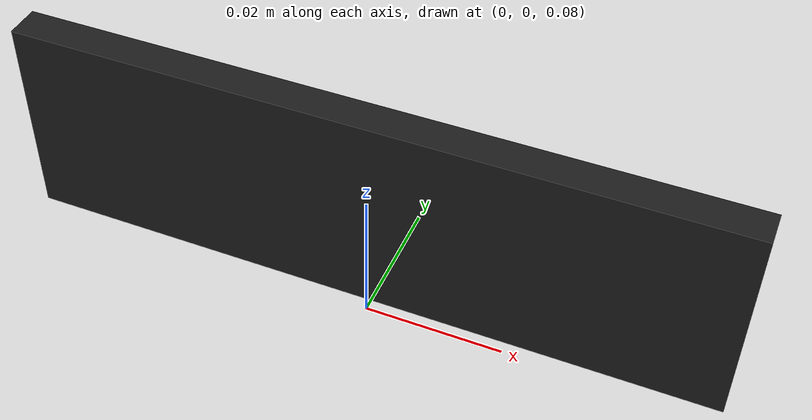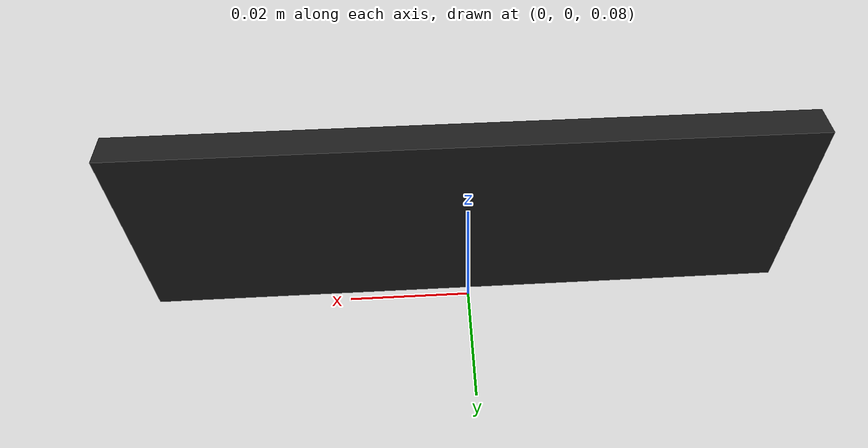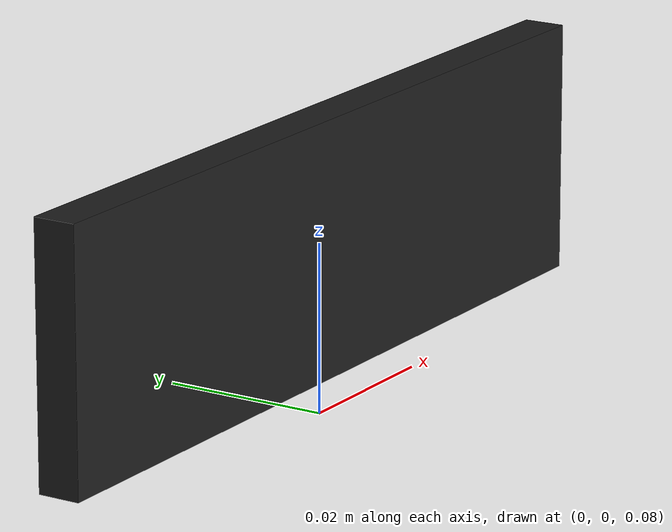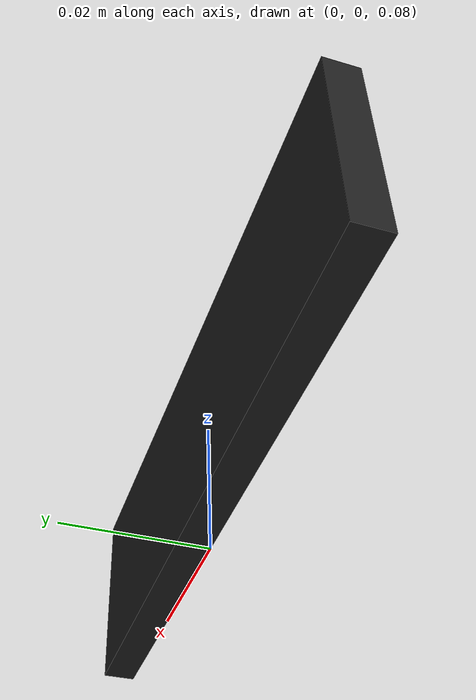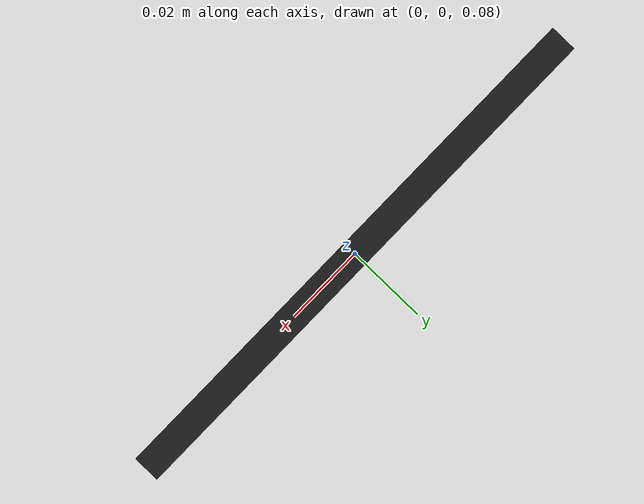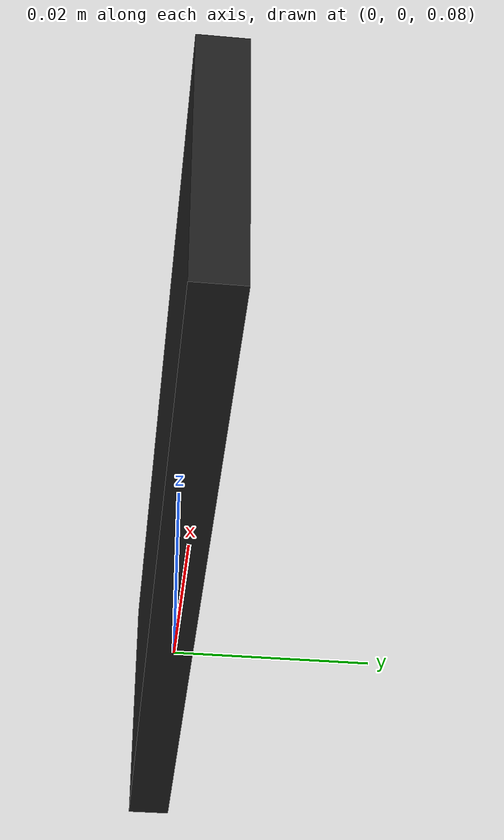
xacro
<?xml version="1.0" ?>
<robot name="traffic_lights" xmlns:xacro="http://ros.org/wiki/xacro">
    <xacro:include filename="$(find turtlebot3_description)/urdf/common_properties.xacro"/>
    <xacro:include filename="$(find stage_arene_ros)/urdf/traffic_lights.gazebo.xacro"/>

    <link name="world"/>

    <joint name="base_joint" type="fixed">
        <parent link="world"/>
        <child link="base_link"/>
        <origin xyz="0 0 0.1" rpy="1.57 0 0"/>
    </joint>

    <link name="base_link">
        <visual>
            <geometry>
                <box size="0.1 0.03 0.005"/>
            </geometry>
            <material name="black"/>
        </visual>

        <collision>
            <origin xyz="0 0 0.001" rpy="0 0 0"/>
            <geometry>
                <box size="0.09 0.029 0.0049"/>
            </geometry>
        </collision>

        <inertial>
            <origin xyz="0 0 0" rpy="0 0 0"/>
            <mass value="0.1"/>
            <inertia ixx="0.0001" ixy="0" ixz="0"
                     iyy="0.0001" iyz="0"
                     izz="0.0001" />
        </inertial>
    </link>

    <xacro:macro name="light" params="color pos">
        <link name="light_${color}">
            <visual>
                <geometry>
                    <cylinder length="0.003" radius="0.009"/>
                </geometry>
                <material name="${color}"/>
            </visual>
            <inertial>
                <origin xyz="0 0 0" rpy="0 0 0"/>
                <mass value="0.01"/>
                <inertia ixx="0.0001" ixy="0" ixz="0"
                         iyy="0.0001" iyz="0"
                         izz="0.0001" />
            </inertial>
        </link>
        <joint name="base_to_light_${color}" type="prismatic">
            <parent link="base_link"/>
            <child link="light_${color}"/>
            <origin xyz="${pos} 0.0 0.0" rpy="0 0 0"/>
            <axis xyz="0 0 1"/>
            <limit lower="0.0" upper="0.002" effort="1000.0" velocity="1000.0"/>
            <dynamics damping="0.0" friction="0.1"/>
        </joint>
    </xacro:macro>

    <xacro:light color="red" pos="${-1/30}"/>
    <xacro:light color="orange" pos="0.0"/>
    <xacro:light color="green" pos="${1/30}"/>

</robot>
